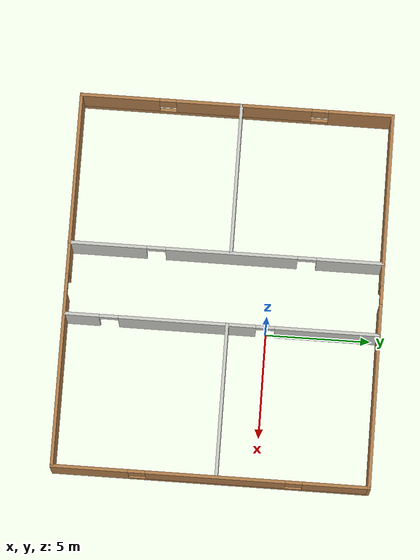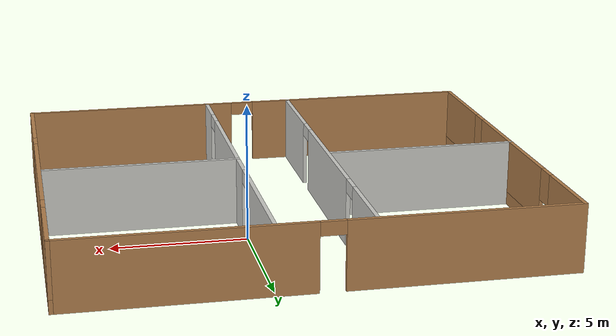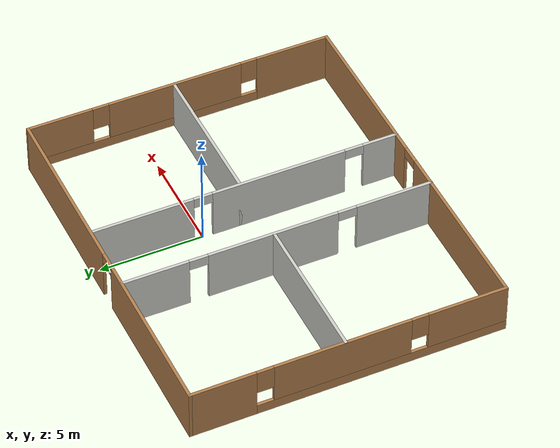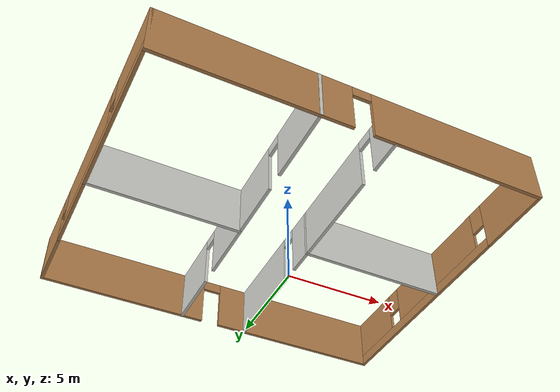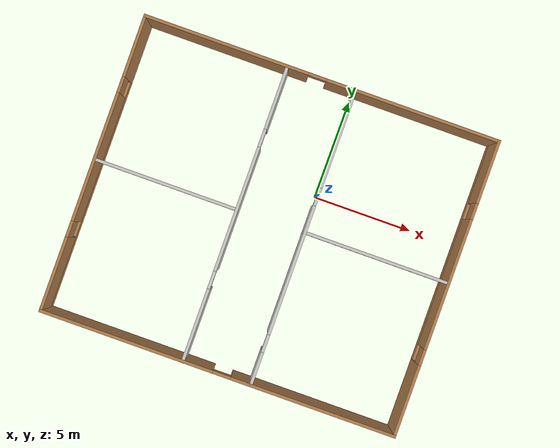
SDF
<?xml version='1.0'?>
<sdf version='1.6'>
  <model name='project_building'>
    <pose frame=''>-1.649 -2.12035 0 0 -0 0</pose>
    <link name='Wall_11'>
      <pose frame=''>0 -7.43466 0 0 -0 0</pose>
      <visual name='Wall_11_Visual_0'>
        <pose frame=''>-4.61874 0 1.25 0 -0 0</pose>
        <geometry>
          <box>
            <size>8.76252 0.15 2.5</size>
          </box>
        </geometry>
        <material>
          <script>
            <uri>file://media/materials/scripts/gazebo.material</uri>
            <name>Gazebo/Wood</name>
          </script>
          <ambient>1 1 1 1</ambient>
        </material>
        <meta>
          <layer>0</layer>
        </meta>
      </visual>
      <collision name='Wall_11_Collision_0'>
        <geometry>
          <box>
            <size>8.76252 0.15 2.5</size>
          </box>
        </geometry>
        <pose frame=''>-4.61874 0 1.25 0 -0 0</pose>
      </collision>
      <visual name='Wall_11_Visual_1'>
        <pose frame=''>4.83126 0 1.25 0 -0 0</pose>
        <geometry>
          <box>
            <size>8.33748 0.15 2.5</size>
          </box>
        </geometry>
        <material>
          <script>
            <uri>file://media/materials/scripts/gazebo.material</uri>
            <name>Gazebo/Wood</name>
          </script>
          <ambient>1 1 1 1</ambient>
        </material>
        <meta>
          <layer>0</layer>
        </meta>
      </visual>
      <collision name='Wall_11_Collision_1'>
        <geometry>
          <box>
            <size>8.33748 0.15 2.5</size>
          </box>
        </geometry>
        <pose frame=''>4.83126 0 1.25 0 -0 0</pose>
      </collision>
      <visual name='Wall_11_Visual_2'>
        <pose frame=''>0.212518 0 2.25 0 -0 0</pose>
        <geometry>
          <box>
            <size>0.9 0.15 0.5</size>
          </box>
        </geometry>
        <material>
          <script>
            <uri>file://media/materials/scripts/gazebo.material</uri>
            <name>Gazebo/Wood</name>
          </script>
          <ambient>1 1 1 1</ambient>
        </material>
        <meta>
          <layer>0</layer>
        </meta>
      </visual>
      <collision name='Wall_11_Collision_2'>
        <geometry>
          <box>
            <size>0.9 0.15 0.5</size>
          </box>
        </geometry>
        <pose frame=''>0.212518 0 2.25 0 -0 0</pose>
      </collision>
    </link>
    <link name='Wall_12'>
      <pose frame=''>8.925 0.005346 0 0 -0 1.5708</pose>
      <visual name='Wall_12_Visual_0'>
        <pose frame=''>-5.68761 0 1.25 0 -0 0</pose>
        <geometry>
          <box>
            <size>3.65478 0.15 2.5</size>
          </box>
        </geometry>
        <material>
          <script>
            <uri>file://media/materials/scripts/gazebo.material</uri>
            <name>Gazebo/Wood</name>
          </script>
          <ambient>1 1 1 1</ambient>
        </material>
        <meta>
          <layer>0</layer>
        </meta>
      </visual>
      <collision name='Wall_12_Collision_0'>
        <geometry>
          <box>
            <size>3.65478 0.15 2.5</size>
          </box>
        </geometry>
        <pose frame=''>-5.68761 0 1.25 0 -0 0</pose>
      </collision>
      <visual name='Wall_12_Visual_1'>
        <pose frame=''>1.82739 0 0.25 0 -0 0</pose>
        <geometry>
          <box>
            <size>11.3752 0.15 0.5</size>
          </box>
        </geometry>
        <material>
          <script>
            <uri>file://media/materials/scripts/gazebo.material</uri>
            <name>Gazebo/Wood</name>
          </script>
          <ambient>1 1 1 1</ambient>
        </material>
        <meta>
          <layer>0</layer>
        </meta>
      </visual>
      <collision name='Wall_12_Collision_1'>
        <geometry>
          <box>
            <size>11.3752 0.15 0.5</size>
          </box>
        </geometry>
        <pose frame=''>1.82739 0 0.25 0 -0 0</pose>
      </collision>
      <visual name='Wall_12_Visual_2'>
        <pose frame=''>0.2259 0 1.5 0 -0 0</pose>
        <geometry>
          <box>
            <size>6.57224 0.15 2</size>
          </box>
        </geometry>
        <material>
          <script>
            <uri>file://media/materials/scripts/gazebo.material</uri>
            <name>Gazebo/Wood</name>
          </script>
          <ambient>1 1 1 1</ambient>
        </material>
        <meta>
          <layer>0</layer>
        </meta>
      </visual>
      <collision name='Wall_12_Collision_2'>
        <geometry>
          <box>
            <size>6.57224 0.15 2</size>
          </box>
        </geometry>
        <pose frame=''>0.2259 0 1.5 0 -0 0</pose>
      </collision>
      <visual name='Wall_12_Visual_3'>
        <pose frame=''>5.91351 0 1.5 0 -0 0</pose>
        <geometry>
          <box>
            <size>3.20298 0.15 2</size>
          </box>
        </geometry>
        <material>
          <script>
            <uri>file://media/materials/scripts/gazebo.material</uri>
            <name>Gazebo/Wood</name>
          </script>
          <ambient>1 1 1 1</ambient>
        </material>
        <meta>
          <layer>0</layer>
        </meta>
      </visual>
      <collision name='Wall_12_Collision_3'>
        <geometry>
          <box>
            <size>3.20298 0.15 2</size>
          </box>
        </geometry>
        <pose frame=''>5.91351 0 1.5 0 -0 0</pose>
      </collision>
      <visual name='Wall_12_Visual_4'>
        <pose frame=''>-3.46022 0 1.9 0 -0 0</pose>
        <geometry>
          <box>
            <size>0.8 0.15 1.2</size>
          </box>
        </geometry>
        <material>
          <script>
            <uri>file://media/materials/scripts/gazebo.material</uri>
            <name>Gazebo/Wood</name>
          </script>
          <ambient>1 1 1 1</ambient>
        </material>
        <meta>
          <layer>0</layer>
        </meta>
      </visual>
      <collision name='Wall_12_Collision_4'>
        <geometry>
          <box>
            <size>0.8 0.15 1.2</size>
          </box>
        </geometry>
        <pose frame=''>-3.46022 0 1.9 0 -0 0</pose>
      </collision>
      <visual name='Wall_12_Visual_5'>
        <pose frame=''>3.91202 0 1.9 0 -0 0</pose>
        <geometry>
          <box>
            <size>0.8 0.15 1.2</size>
          </box>
        </geometry>
        <material>
          <script>
            <uri>file://media/materials/scripts/gazebo.material</uri>
            <name>Gazebo/Wood</name>
          </script>
          <ambient>1 1 1 1</ambient>
        </material>
        <meta>
          <layer>0</layer>
        </meta>
      </visual>
      <collision name='Wall_12_Collision_5'>
        <geometry>
          <box>
            <size>0.8 0.15 1.2</size>
          </box>
        </geometry>
        <pose frame=''>3.91202 0 1.9 0 -0 0</pose>
      </collision>
    </link>
    <link name='Wall_16'>
      <pose frame=''>0 7.44534 0 0 -0 3.14159</pose>
      <visual name='Wall_16_Visual_0'>
        <pose frame=''>-4.6017 0 1.25 0 -0 0</pose>
        <geometry>
          <box>
            <size>8.7966 0.15 2.5</size>
          </box>
        </geometry>
        <material>
          <script>
            <uri>file://media/materials/scripts/gazebo.material</uri>
            <name>Gazebo/Wood</name>
          </script>
          <ambient>1 1 1 1</ambient>
        </material>
        <meta>
          <layer>0</layer>
        </meta>
      </visual>
      <collision name='Wall_16_Collision_0'>
        <geometry>
          <box>
            <size>8.7966 0.15 2.5</size>
          </box>
        </geometry>
        <pose frame=''>-4.6017 0 1.25 0 -0 0</pose>
      </collision>
      <visual name='Wall_16_Visual_1'>
        <pose frame=''>4.8483 0 1.25 0 -0 0</pose>
        <geometry>
          <box>
            <size>8.3034 0.15 2.5</size>
          </box>
        </geometry>
        <material>
          <script>
            <uri>file://media/materials/scripts/gazebo.material</uri>
            <name>Gazebo/Wood</name>
          </script>
          <ambient>1 1 1 1</ambient>
        </material>
        <meta>
          <layer>0</layer>
        </meta>
      </visual>
      <collision name='Wall_16_Collision_1'>
        <geometry>
          <box>
            <size>8.3034 0.15 2.5</size>
          </box>
        </geometry>
        <pose frame=''>4.8483 0 1.25 0 -0 0</pose>
      </collision>
      <visual name='Wall_16_Visual_2'>
        <pose frame=''>0.246597 0 2.25 0 -0 0</pose>
        <geometry>
          <box>
            <size>0.9 0.15 0.5</size>
          </box>
        </geometry>
        <material>
          <script>
            <uri>file://media/materials/scripts/gazebo.material</uri>
            <name>Gazebo/Wood</name>
          </script>
          <ambient>1 1 1 1</ambient>
        </material>
        <meta>
          <layer>0</layer>
        </meta>
      </visual>
      <collision name='Wall_16_Collision_2'>
        <geometry>
          <box>
            <size>0.9 0.15 0.5</size>
          </box>
        </geometry>
        <pose frame=''>0.246597 0 2.25 0 -0 0</pose>
      </collision>
    </link>
    <link name='Wall_17'>
      <pose frame=''>-8.925 0.005346 0 0 0 -1.5708</pose>
      <visual name='Wall_17_Visual_0'>
        <pose frame=''>-5.9441 0 1.25 0 -0 0</pose>
        <geometry>
          <box>
            <size>3.1418 0.15 2.5</size>
          </box>
        </geometry>
        <material>
          <script>
            <uri>file://media/materials/scripts/gazebo.material</uri>
            <name>Gazebo/Wood</name>
          </script>
          <ambient>1 1 1 1</ambient>
        </material>
        <meta>
          <layer>0</layer>
        </meta>
      </visual>
      <collision name='Wall_17_Collision_0'>
        <geometry>
          <box>
            <size>3.1418 0.15 2.5</size>
          </box>
        </geometry>
        <pose frame=''>-5.9441 0 1.25 0 -0 0</pose>
      </collision>
      <visual name='Wall_17_Visual_1'>
        <pose frame=''>1.5709 0 0.25 0 -0 0</pose>
        <geometry>
          <box>
            <size>11.8882 0.15 0.5</size>
          </box>
        </geometry>
        <material>
          <script>
            <uri>file://media/materials/scripts/gazebo.material</uri>
            <name>Gazebo/Wood</name>
          </script>
          <ambient>1 1 1 1</ambient>
        </material>
        <meta>
          <layer>0</layer>
        </meta>
      </visual>
      <collision name='Wall_17_Collision_1'>
        <geometry>
          <box>
            <size>11.8882 0.15 0.5</size>
          </box>
        </geometry>
        <pose frame=''>1.5709 0 0.25 0 -0 0</pose>
      </collision>
      <visual name='Wall_17_Visual_2'>
        <pose frame=''>-0.332966 0 1.5 0 -0 0</pose>
        <geometry>
          <box>
            <size>6.48047 0.15 2</size>
          </box>
        </geometry>
        <material>
          <script>
            <uri>file://media/materials/scripts/gazebo.material</uri>
            <name>Gazebo/Wood</name>
          </script>
          <ambient>1 1 1 1</ambient>
        </material>
        <meta>
          <layer>0</layer>
        </meta>
      </visual>
      <collision name='Wall_17_Collision_2'>
        <geometry>
          <box>
            <size>6.48047 0.15 2</size>
          </box>
        </geometry>
        <pose frame=''>-0.332966 0 1.5 0 -0 0</pose>
      </collision>
      <visual name='Wall_17_Visual_3'>
        <pose frame=''>5.61114 0 1.5 0 -0 0</pose>
        <geometry>
          <box>
            <size>3.80773 0.15 2</size>
          </box>
        </geometry>
        <material>
          <script>
            <uri>file://media/materials/scripts/gazebo.material</uri>
            <name>Gazebo/Wood</name>
          </script>
          <ambient>1 1 1 1</ambient>
        </material>
        <meta>
          <layer>0</layer>
        </meta>
      </visual>
      <collision name='Wall_17_Collision_3'>
        <geometry>
          <box>
            <size>3.80773 0.15 2</size>
          </box>
        </geometry>
        <pose frame=''>5.61114 0 1.5 0 -0 0</pose>
      </collision>
      <visual name='Wall_17_Visual_4'>
        <pose frame=''>-3.9732 0 1.9 0 -0 0</pose>
        <geometry>
          <box>
            <size>0.8 0.15 1.2</size>
          </box>
        </geometry>
        <material>
          <script>
            <uri>file://media/materials/scripts/gazebo.material</uri>
            <name>Gazebo/Wood</name>
          </script>
          <ambient>1 1 1 1</ambient>
        </material>
        <meta>
          <layer>0</layer>
        </meta>
      </visual>
      <collision name='Wall_17_Collision_4'>
        <geometry>
          <box>
            <size>0.8 0.15 1.2</size>
          </box>
        </geometry>
        <pose frame=''>-3.9732 0 1.9 0 -0 0</pose>
      </collision>
      <visual name='Wall_17_Visual_5'>
        <pose frame=''>3.30727 0 1.9 0 -0 0</pose>
        <geometry>
          <box>
            <size>0.8 0.15 1.2</size>
          </box>
        </geometry>
        <material>
          <script>
            <uri>file://media/materials/scripts/gazebo.material</uri>
            <name>Gazebo/Wood</name>
          </script>
          <ambient>1 1 1 1</ambient>
        </material>
        <meta>
          <layer>0</layer>
        </meta>
      </visual>
      <collision name='Wall_17_Collision_5'>
        <geometry>
          <box>
            <size>0.8 0.15 1.2</size>
          </box>
        </geometry>
        <pose frame=''>3.30727 0 1.9 0 -0 0</pose>
      </collision>
    </link>
    <link name='Wall_19'>
      <pose frame=''>-1.74535 -0.020346 0 0 0 -1.5708</pose>
      <visual name='Wall_19_Visual_0'>
        <pose frame=''>-5.89797 0 1.25 0 -0 0</pose>
        <geometry>
          <box>
            <size>3.20406 0.15 2.5</size>
          </box>
        </geometry>
        <material>
          <script>
            <uri>file://media/materials/scripts/gazebo.material</uri>
            <name>Gazebo/CeilingTiled</name>
          </script>
          <ambient>1 1 1 1</ambient>
        </material>
        <meta>
          <layer>0</layer>
        </meta>
      </visual>
      <collision name='Wall_19_Collision_0'>
        <geometry>
          <box>
            <size>3.20406 0.15 2.5</size>
          </box>
        </geometry>
        <pose frame=''>-5.89797 0 1.25 0 -0 0</pose>
      </collision>
      <visual name='Wall_19_Visual_1'>
        <pose frame=''>-0.266887 0 1.25 0 -0 0</pose>
        <geometry>
          <box>
            <size>6.25811 0.15 2.5</size>
          </box>
        </geometry>
        <material>
          <script>
            <uri>file://media/materials/scripts/gazebo.material</uri>
            <name>Gazebo/CeilingTiled</name>
          </script>
          <ambient>1 1 1 1</ambient>
        </material>
        <meta>
          <layer>0</layer>
        </meta>
      </visual>
      <collision name='Wall_19_Collision_1'>
        <geometry>
          <box>
            <size>6.25811 0.15 2.5</size>
          </box>
        </geometry>
        <pose frame=''>-0.266887 0 1.25 0 -0 0</pose>
      </collision>
      <visual name='Wall_19_Visual_2'>
        <pose frame=''>5.63108 0 1.25 0 -0 0</pose>
        <geometry>
          <box>
            <size>3.73783 0.15 2.5</size>
          </box>
        </geometry>
        <material>
          <script>
            <uri>file://media/materials/scripts/gazebo.material</uri>
            <name>Gazebo/CeilingTiled</name>
          </script>
          <ambient>1 1 1 1</ambient>
        </material>
        <meta>
          <layer>0</layer>
        </meta>
      </visual>
      <collision name='Wall_19_Collision_2'>
        <geometry>
          <box>
            <size>3.73783 0.15 2.5</size>
          </box>
        </geometry>
        <pose frame=''>5.63108 0 1.25 0 -0 0</pose>
      </collision>
      <visual name='Wall_19_Visual_3'>
        <pose frame=''>-3.84594 0 2.25 0 -0 0</pose>
        <geometry>
          <box>
            <size>0.9 0.15 0.5</size>
          </box>
        </geometry>
        <material>
          <script>
            <uri>file://media/materials/scripts/gazebo.material</uri>
            <name>Gazebo/CeilingTiled</name>
          </script>
          <ambient>1 1 1 1</ambient>
        </material>
        <meta>
          <layer>0</layer>
        </meta>
      </visual>
      <collision name='Wall_19_Collision_3'>
        <geometry>
          <box>
            <size>0.9 0.15 0.5</size>
          </box>
        </geometry>
        <pose frame=''>-3.84594 0 2.25 0 -0 0</pose>
      </collision>
      <visual name='Wall_19_Visual_4'>
        <pose frame=''>3.31217 0 2.25 0 -0 0</pose>
        <geometry>
          <box>
            <size>0.9 0.15 0.5</size>
          </box>
        </geometry>
        <material>
          <script>
            <uri>file://media/materials/scripts/gazebo.material</uri>
            <name>Gazebo/CeilingTiled</name>
          </script>
          <ambient>1 1 1 1</ambient>
        </material>
        <meta>
          <layer>0</layer>
        </meta>
      </visual>
      <collision name='Wall_19_Collision_4'>
        <geometry>
          <box>
            <size>0.9 0.15 0.5</size>
          </box>
        </geometry>
        <pose frame=''>3.31217 0 2.25 0 -0 0</pose>
      </collision>
    </link>
    <link name='Wall_21'>
      <pose frame=''>1.68076 0.010245 0 0 0 -1.5708</pose>
      <visual name='Wall_21_Visual_0'>
        <pose frame=''>-5.01086 0 1.25 0 -0 0</pose>
        <geometry>
          <box>
            <size>4.97829 0.15 2.5</size>
          </box>
        </geometry>
        <material>
          <script>
            <uri>file://media/materials/scripts/gazebo.material</uri>
            <name>Gazebo/CeilingTiled</name>
          </script>
          <ambient>1 1 1 1</ambient>
        </material>
        <meta>
          <layer>0</layer>
        </meta>
      </visual>
      <collision name='Wall_21_Collision_0'>
        <geometry>
          <box>
            <size>4.97829 0.15 2.5</size>
          </box>
        </geometry>
        <pose frame=''>-5.01086 0 1.25 0 -0 0</pose>
      </collision>
      <visual name='Wall_21_Visual_1'>
        <pose frame=''>1.62971 0 1.25 0 -0 0</pose>
        <geometry>
          <box>
            <size>6.50284 0.15 2.5</size>
          </box>
        </geometry>
        <material>
          <script>
            <uri>file://media/materials/scripts/gazebo.material</uri>
            <name>Gazebo/CeilingTiled</name>
          </script>
          <ambient>1 1 1 1</ambient>
        </material>
        <meta>
          <layer>0</layer>
        </meta>
      </visual>
      <collision name='Wall_21_Collision_1'>
        <geometry>
          <box>
            <size>6.50284 0.15 2.5</size>
          </box>
        </geometry>
        <pose frame=''>1.62971 0 1.25 0 -0 0</pose>
      </collision>
      <visual name='Wall_21_Visual_2'>
        <pose frame=''>6.64056 0 1.25 0 -0 0</pose>
        <geometry>
          <box>
            <size>1.71887 0.15 2.5</size>
          </box>
        </geometry>
        <material>
          <script>
            <uri>file://media/materials/scripts/gazebo.material</uri>
            <name>Gazebo/CeilingTiled</name>
          </script>
          <ambient>1 1 1 1</ambient>
        </material>
        <meta>
          <layer>0</layer>
        </meta>
      </visual>
      <collision name='Wall_21_Collision_2'>
        <geometry>
          <box>
            <size>1.71887 0.15 2.5</size>
          </box>
        </geometry>
        <pose frame=''>6.64056 0 1.25 0 -0 0</pose>
      </collision>
      <visual name='Wall_21_Visual_3'>
        <pose frame=''>-2.07171 0 2.25 0 -0 0</pose>
        <geometry>
          <box>
            <size>0.9 0.15 0.5</size>
          </box>
        </geometry>
        <material>
          <script>
            <uri>file://media/materials/scripts/gazebo.material</uri>
            <name>Gazebo/CeilingTiled</name>
          </script>
          <ambient>1 1 1 1</ambient>
        </material>
        <meta>
          <layer>0</layer>
        </meta>
      </visual>
      <collision name='Wall_21_Collision_3'>
        <geometry>
          <box>
            <size>0.9 0.15 0.5</size>
          </box>
        </geometry>
        <pose frame=''>-2.07171 0 2.25 0 -0 0</pose>
      </collision>
      <visual name='Wall_21_Visual_4'>
        <pose frame=''>5.33113 0 2.25 0 -0 0</pose>
        <geometry>
          <box>
            <size>0.9 0.15 0.5</size>
          </box>
        </geometry>
        <material>
          <script>
            <uri>file://media/materials/scripts/gazebo.material</uri>
            <name>Gazebo/CeilingTiled</name>
          </script>
          <ambient>1 1 1 1</ambient>
        </material>
        <meta>
          <layer>0</layer>
        </meta>
      </visual>
      <collision name='Wall_21_Collision_4'>
        <geometry>
          <box>
            <size>0.9 0.15 0.5</size>
          </box>
        </geometry>
        <pose frame=''>5.33113 0 2.25 0 -0 0</pose>
      </collision>
    </link>
    <link name='Wall_23'>
      <collision name='Wall_23_Collision'>
        <geometry>
          <box>
            <size>7.25 0.15 2.5</size>
          </box>
        </geometry>
        <pose frame=''>0 0 1.25 0 -0 0</pose>
      </collision>
      <visual name='Wall_23_Visual'>
        <pose frame=''>0 0 1.25 0 -0 0</pose>
        <geometry>
          <box>
            <size>7.25 0.15 2.5</size>
          </box>
        </geometry>
        <material>
          <script>
            <uri>file://media/materials/scripts/gazebo.material</uri>
            <name>Gazebo/CeilingTiled</name>
          </script>
          <ambient>1 1 1 1</ambient>
        </material>
        <meta>
          <layer>0</layer>
        </meta>
      </visual>
      <pose frame=''>-5.35346 0.215951 0 0 -0 0</pose>
    </link>
    <link name='Wall_25'>
      <collision name='Wall_25_Collision'>
        <geometry>
          <box>
            <size>7.25 0.15 2.5</size>
          </box>
        </geometry>
        <pose frame=''>0 0 1.25 0 -0 0</pose>
      </collision>
      <visual name='Wall_25_Visual'>
        <pose frame=''>0 0 1.25 0 -0 0</pose>
        <geometry>
          <box>
            <size>7.25 0.15 2.5</size>
          </box>
        </geometry>
        <material>
          <script>
            <uri>file://media/materials/scripts/gazebo.material</uri>
            <name>Gazebo/CeilingTiled</name>
          </script>
          <ambient>1 1 1 1</ambient>
        </material>
        <meta>
          <layer>0</layer>
        </meta>
      </visual>
      <pose frame=''>5.23076 0.277131 0 0 -0 0</pose>
    </link>
    <static>1</static>
  </model>
</sdf>
